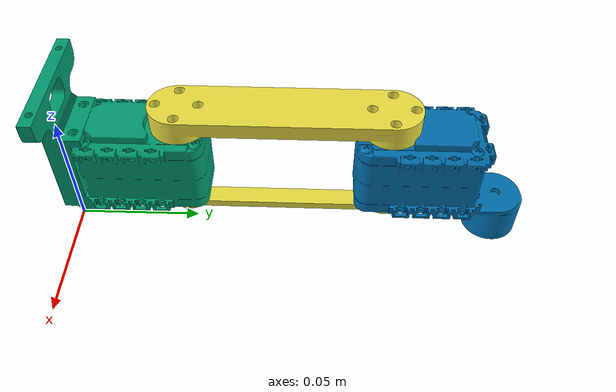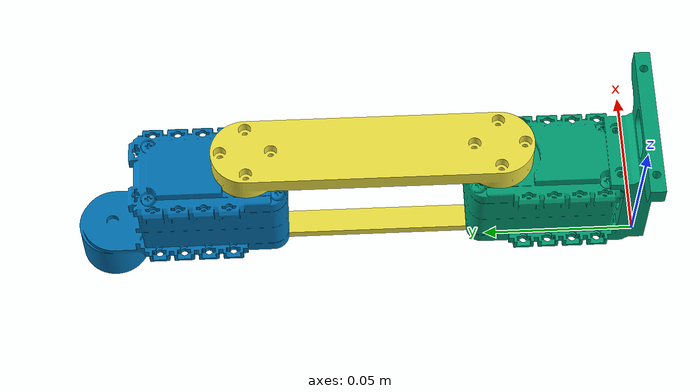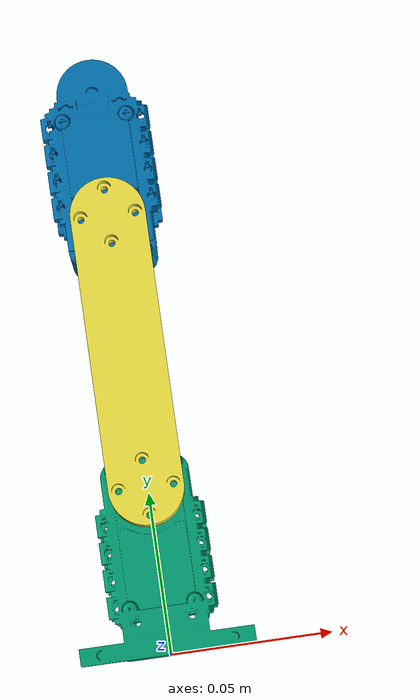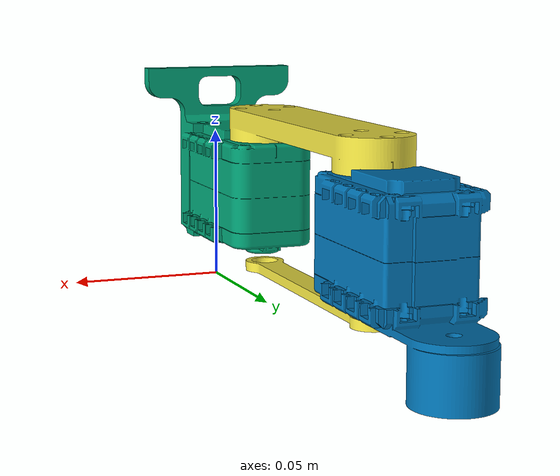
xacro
<?xml version="1.0"?>
<robot xmlns:xacro="http://www.ros.org/wiki/xacro" name="scara_cpe">
    <xacro:arg name="initial_positions_file" default="initial_positions.yaml" />

    <!-- Import scara_cpe urdf file -->
    <xacro:include filename="$(find scara_cpe_description)/urdf/scara_cpe.urdf.xacro" />

    <!-- Import control_xacro -->
    <xacro:include filename="scara_cpe.ros2_control.xacro" />

    <xacro:scara_cpe_ros2_control name="FakeSystem" initial_positions_file="$(arg initial_positions_file)"/>

</robot>

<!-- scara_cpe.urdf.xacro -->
<robot xmlns:xacro="http://www.ros.org/wiki/xacro"  name="scara_cpe">

  <xacro:property name="Base_LENGTH" value="0.06" />
  <xacro:property name="Link1_LENGTH" value="0.08" />
  <xacro:property name="Link2_LENGTH" value="0.047" />
  <xacro:property name="Base_HEIGHT" value="0.03" />
  <xacro:property name="Link2_HEIGHT" value="-0.025" />
  <xacro:property name="PI" value="3.14159265359" />
  <xacro:property name="PI_half" value="1.57079632679" />

  <!-- LINK -->

  <link name="world"/>

  <link name="camera_link">
  <inertial>
    <mass value="0.001" />
    <origin xyz="0 0 0" />
    <inertia ixx="0.0001" ixy="0.0" ixz="0.0"
             iyy="0.0001" iyz="0.0"
             izz="0.0001" />
    </inertial>
  </link>

  <link name="base_link">

    <visual>
      <origin xyz="0 0.034 0" rpy="-${PI_half} 0 -${PI_half}" />
      <geometry>
        <mesh filename="file://$(find scara_cpe_description)/urdf/scara_cpe-base_link.dae" scale="0.001 0.001 0.001"/>
      </geometry>
    </visual>

    <collision>
      <origin xyz="0 0.034 0" rpy="-${PI_half} 0 -${PI_half}" />
      <geometry>
        <mesh filename="file://$(find scara_cpe_description)/urdf/scara_cpe-base_link.dae" scale="0.001 0.001 0.001"/>
      </geometry>
    </collision>

    <inertial>
      <origin xyz="0 0.025 0" rpy="0 0 0" />
      <mass value="0.1"/>
      <inertia
        ixx="0.0001" ixy="1e-12" ixz="1e-12"
        iyy="0.0001" iyz="1e-12"
        izz="0.0001"/>
    </inertial>

  </link>

  <link name="link1" >

    <visual>
      <origin xyz="0 -0.012 0" rpy="-${PI_half} 0 -${PI_half}" />
      <geometry>
        <mesh filename="file://$(find scara_cpe_description)/urdf/scara_cpe-link_1.dae" scale="0.001 0.001 0.001"/>
      </geometry>
    </visual>

    <collision>
      <origin xyz="0 ${Link1_LENGTH/2} 0" rpy="0 0 0" />
      <geometry>
        <box size="0.02 ${Link1_LENGTH/2} 0.05"/>
      </geometry>
    </collision>

    <inertial>
      <origin xyz="0 0.04 0" rpy="0 0 0" />
      <mass value="0.1"/>
      <inertia
        ixx="0.00003" ixy="1e-12" ixz="1e-12"
        iyy="0.00003" iyz="1e-12"
        izz="0.00003"/>
    </inertial>

  </link>

  <link name="link2" >

    <visual>
	  <origin xyz="0.0133 -0.092 0" rpy="-${PI_half} 0 -1.42579632679" />  <!-- -1.42579632679  - pi/2 + 0.145 -->
      <geometry>
        <mesh filename="file://$(find scara_cpe_description)/urdf/scara_cpe-link_2.dae" scale="0.001 0.001 0.001"/>
      </geometry>
    </visual>

    <collision>
      <origin xyz="0 ${Link2_LENGTH/2} 0" rpy="0 0 0" />
      <geometry>
        <box size="0.032 ${Link2_LENGTH} 0.06"/>
      </geometry>
    </collision>

    <inertial>
      <origin xyz="0 0.02 0" rpy="0 0 0" />
      <mass value="0.1"/>
      <inertia
        ixx="0.0001" ixy="1e-12" ixz="1e-12"
        iyy="0.0001" iyz="1e-12"
        izz="0.0001"/>
    </inertial>

  </link>

  <link name="end_link" >
  </link>

 <!-- JOINT -->

  <joint name="base_fixed" type="fixed">
    <parent link="world"/>
    <child link="base_link"/>
    <origin xyz="0 0 .035" rpy="0 0 0" />
  </joint>

  <joint name="camera_fixed" type="fixed">
    <parent link="world"/>
    <child link="camera_link"/>
    <origin xyz="0 -0.3 0.2" rpy="-${PI_half+0.3} 0 0" />
  </joint>

  <joint name="shoulder_1_joint" type="revolute">
    <parent link="base_link"/>
    <child link="link1"/>
    <origin xyz="0 0.048 0" rpy="0 0 0" />
	  <limit effort="0.1" velocity="1" lower="-${PI_half}" upper="${PI_half}" />
	  <axis xyz="0 0 1" />
  </joint>

  <joint name="shoulder_2_joint" type="revolute">
    <parent link="link1"/>
    <child link="link2"/>
    <origin xyz="0 0.08 0" rpy="0 0 0" />
	  <limit effort="0.1" velocity="1" lower="-2.8" upper="2.8" />
	  <axis xyz="0 0 -1" />
  </joint>

  <joint name="end_joint" type="fixed">
    <parent link="link2"/>
    <child link="end_link"/>
    <origin xyz="0 0.047 -0.025" rpy="0 0 0" />
  </joint>

    <!-- Import ros2_controller DYNAMIXEL elements -->
  <xacro:include filename="$(find scara_cpe_description)/urdf/scara_cpe.ros2_control.xacro" />

  <!-- Import ros2_controller elements -->
  <xacro:scara_cpe_ros2_control name="scara_cpe" />

</robot>
